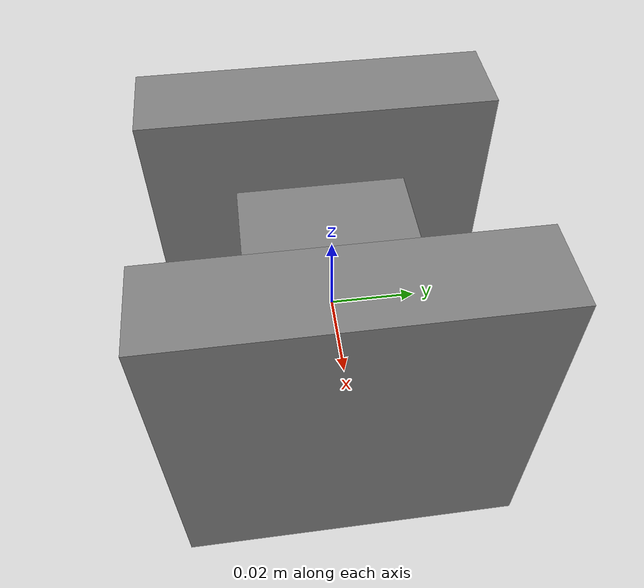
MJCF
<mujoco model="simple_pinch_v2"><option timestep="0.0005" gravity="0 0 0" integrator="implicitfast" solver="Newton" cone="elliptic" iterations="100" tolerance="1e-12"/><size nconmax="64"/><worldbody><body name="left" pos="-0.029699999999999997 0 0"><joint name="left_x" type="slide" axis="1 0 0"/><joint name="left_z" type="slide" axis="0 0 1"/><geom name="left_pad" type="box" size="0.01 .04 .04" mass="1" friction="0.4 .005 .0001"/></body><body name="right" pos="0.029699999999999997 0 0"><joint name="right_x" type="slide" axis="1 0 0"/><joint name="right_z" type="slide" axis="0 0 1"/><geom name="right_pad" type="box" size="0.01 .04 .04" mass="1" friction="0.4 .005 .0001"/></body><body name="cube" pos="0 0 0"><freejoint/><geom name="cube_geom" type="box" size="0.02 0.02 0.02" mass="0.6116" friction="0.4 .005 .0001"/></body></worldbody><contact><pair geom1="left_pad" geom2="cube_geom" condim="3" margin="0" gap="0" friction="0.4 0.4 .005 .0001" solref=".004 1" solimp=".95 .99 .001 .5 2"/><pair geom1="right_pad" geom2="cube_geom" condim="3" margin="0" gap="0" friction="0.4 0.4 .005 .0001" solref=".004 1" solimp=".95 .99 .001 .5 2"/></contact></mujoco>
